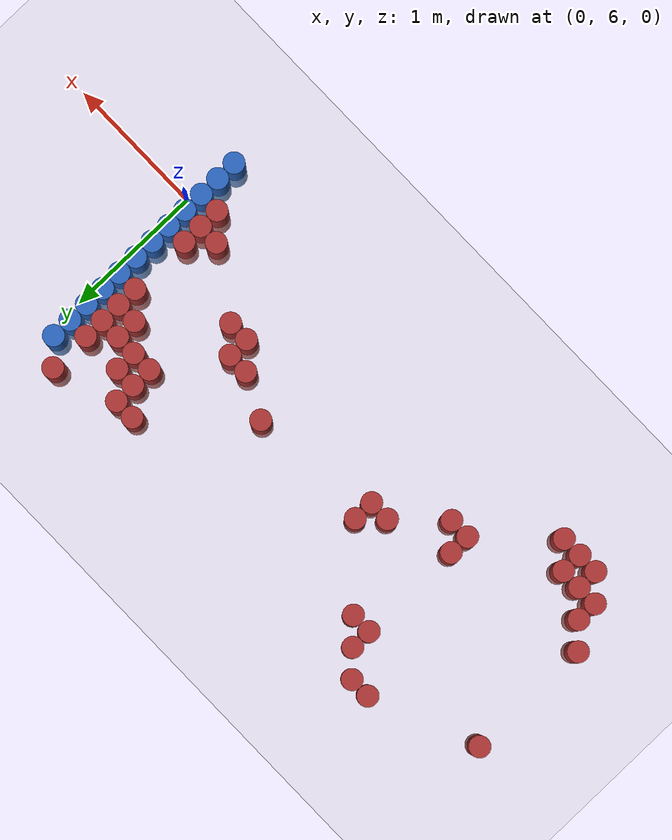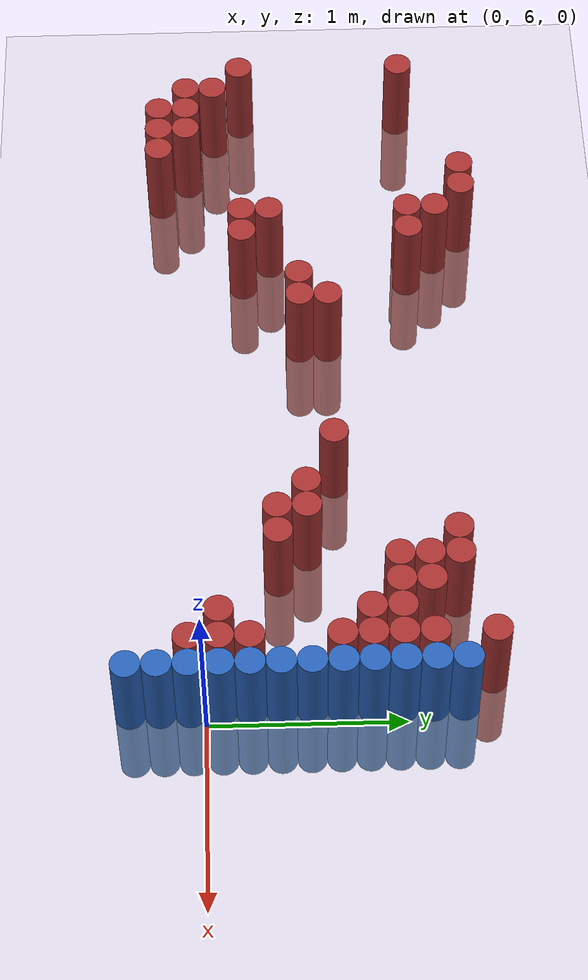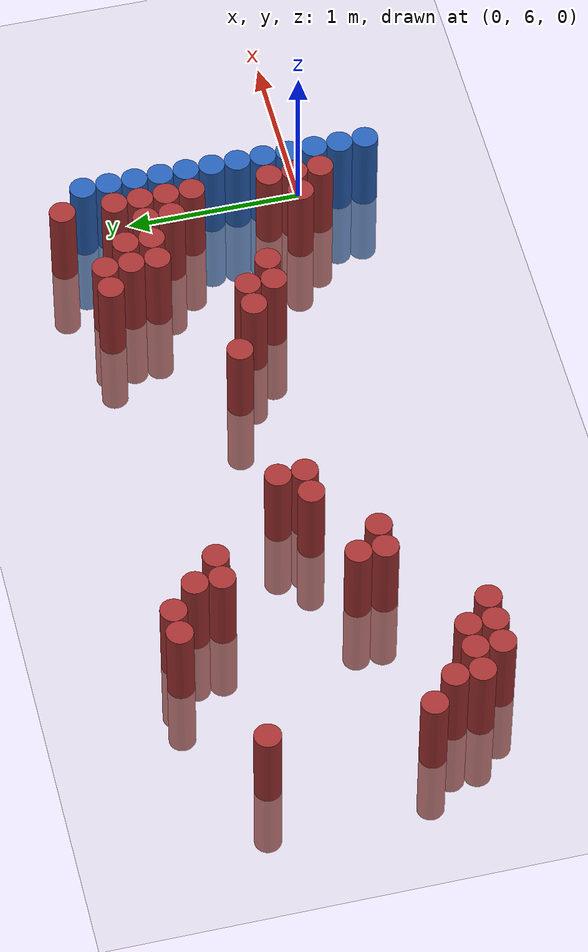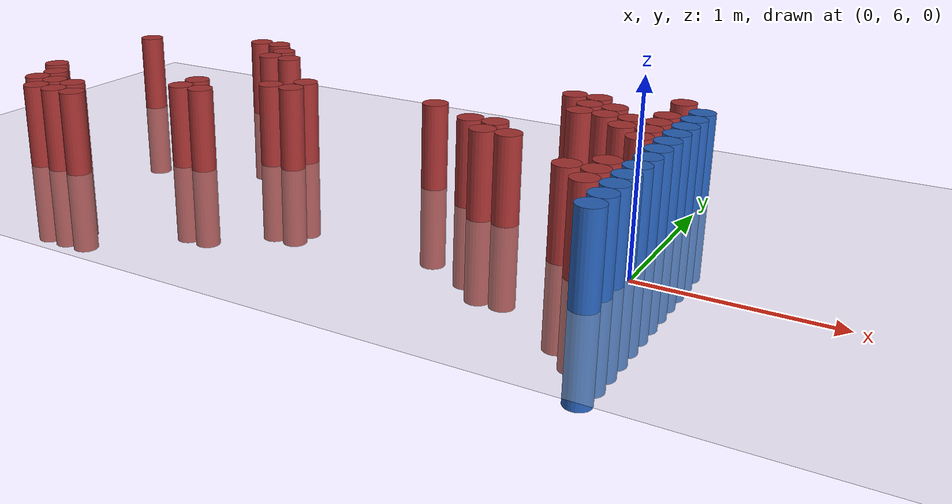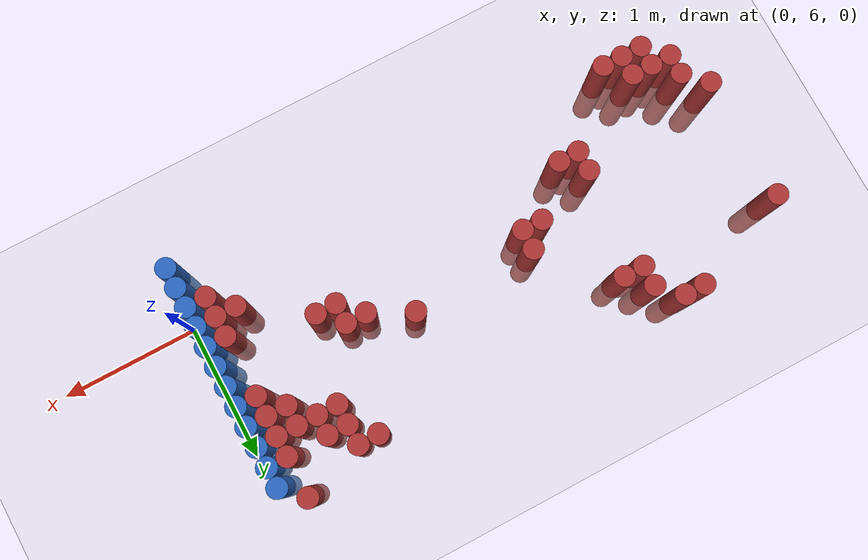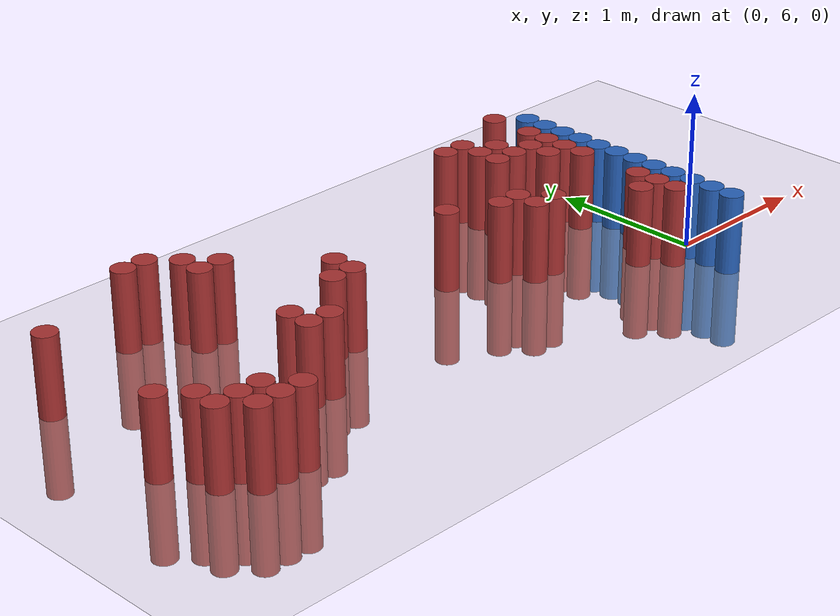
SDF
<sdf version="1.6">
 <world name="default">
  <model name="ground_plane">
   <static>1</static>
   <link name="link">
    <collision name="collision">
     <geometry><plane><normal>0 0 1</normal><size>100 100</size></plane></geometry>
     <surface><friction><ode><mu>100</mu><mu2>50</mu2></ode></friction></surface>
    </collision>
    <visual name="visual">
     <cast_shadows>0</cast_shadows>
     <geometry><plane><normal>0 0 1</normal><size>100 100</size></plane></geometry>
     <material>
      <script><uri>file://media/materials/scripts/gazebo.material</uri><name>Gazebo/Grey</name></script>
     </material>
    </visual>
   </link>
  </model>
  <model name="unit_cylinder_155">
   <static>1</static>
   <pose>-3.975000 6.225000 0.000000 0.000000 0.000000 0.000000</pose>
   <link name="link">
    <inertial>
     <mass>1</mass>
     <inertia><ixx>0.145833</ixx><ixy>0</ixy><ixz>0</ixz><iyy>0.145833</iyy><iyz>0</iyz><izz>0.125</izz></inertia>
    </inertial>
    <collision name="collision">
     <geometry><cylinder><radius>0.075000</radius><length>1</length></cylinder></geometry>
    </collision>
    <visual name="visual">
     <geometry><cylinder><radius>0.075000</radius><length>1</length></cylinder></geometry>
     <material>
      <ambient>0.648000 0.192000 0.192000 1</ambient>
      <diffuse>0.648000 0.192000 0.192000 1</diffuse>
     </material>
     <material>
      <script><name>Gazebo/Grey</name><uri>file://media/materials/scripts/gazebo.material</uri></script>
     </material>
    </visual>
   </link>
  </model>
  <model name="unit_cylinder_156">
   <static>1</static>
   <pose>-3.975000 7.125000 0.000000 0.000000 0.000000 0.000000</pose>
   <link name="link">
    <inertial>
     <mass>1</mass>
     <inertia><ixx>0.145833</ixx><ixy>0</ixy><ixz>0</ixz><iyy>0.145833</iyy><iyz>0</iyz><izz>0.125</izz></inertia>
    </inertial>
    <collision name="collision">
     <geometry><cylinder><radius>0.075000</radius><length>1</length></cylinder></geometry>
    </collision>
    <visual name="visual">
     <geometry><cylinder><radius>0.075000</radius><length>1</length></cylinder></geometry>
     <material>
      <ambient>0.648000 0.192000 0.192000 1</ambient>
      <diffuse>0.648000 0.192000 0.192000 1</diffuse>
     </material>
     <material>
      <script><name>Gazebo/Grey</name><uri>file://media/materials/scripts/gazebo.material</uri></script>
     </material>
    </visual>
   </link>
  </model>
  <model name="unit_cylinder_157">
   <static>1</static>
   <pose>-3.825000 5.925000 0.000000 0.000000 0.000000 0.000000</pose>
   <link name="link">
    <inertial>
     <mass>1</mass>
     <inertia><ixx>0.145833</ixx><ixy>0</ixy><ixz>0</ixz><iyy>0.145833</iyy><iyz>0</iyz><izz>0.125</izz></inertia>
    </inertial>
    <collision name="collision">
     <geometry><cylinder><radius>0.075000</radius><length>1</length></cylinder></geometry>
    </collision>
    <visual name="visual">
     <geometry><cylinder><radius>0.075000</radius><length>1</length></cylinder></geometry>
     <material>
      <ambient>0.648000 0.192000 0.192000 1</ambient>
      <diffuse>0.648000 0.192000 0.192000 1</diffuse>
     </material>
     <material>
      <script><name>Gazebo/Grey</name><uri>file://media/materials/scripts/gazebo.material</uri></script>
     </material>
    </visual>
   </link>
  </model>
  <model name="unit_cylinder_158">
   <static>1</static>
   <pose>-3.825000 6.075000 0.000000 0.000000 0.000000 0.000000</pose>
   <link name="link">
    <inertial>
     <mass>1</mass>
     <inertia><ixx>0.145833</ixx><ixy>0</ixy><ixz>0</ixz><iyy>0.145833</iyy><iyz>0</iyz><izz>0.125</izz></inertia>
    </inertial>
    <collision name="collision">
     <geometry><cylinder><radius>0.075000</radius><length>1</length></cylinder></geometry>
    </collision>
    <visual name="visual">
     <geometry><cylinder><radius>0.075000</radius><length>1</length></cylinder></geometry>
     <material>
      <ambient>0.648000 0.192000 0.192000 1</ambient>
      <diffuse>0.648000 0.192000 0.192000 1</diffuse>
     </material>
     <material>
      <script><name>Gazebo/Grey</name><uri>file://media/materials/scripts/gazebo.material</uri></script>
     </material>
    </visual>
   </link>
  </model>
  <model name="unit_cylinder_159">
   <static>1</static>
   <pose>-3.675000 5.775000 0.000000 0.000000 0.000000 0.000000</pose>
   <link name="link">
    <inertial>
     <mass>1</mass>
     <inertia><ixx>0.145833</ixx><ixy>0</ixy><ixz>0</ixz><iyy>0.145833</iyy><iyz>0</iyz><izz>0.125</izz></inertia>
    </inertial>
    <collision name="collision">
     <geometry><cylinder><radius>0.075000</radius><length>1</length></cylinder></geometry>
    </collision>
    <visual name="visual">
     <geometry><cylinder><radius>0.075000</radius><length>1</length></cylinder></geometry>
     <material>
      <ambient>0.648000 0.192000 0.192000 1</ambient>
      <diffuse>0.648000 0.192000 0.192000 1</diffuse>
     </material>
     <material>
      <script><name>Gazebo/Grey</name><uri>file://media/materials/scripts/gazebo.material</uri></script>
     </material>
    </visual>
   </link>
  </model>
  <model name="unit_cylinder_160">
   <static>1</static>
   <pose>-3.675000 5.925000 0.000000 0.000000 0.000000 0.000000</pose>
   <link name="link">
    <inertial>
     <mass>1</mass>
     <inertia><ixx>0.145833</ixx><ixy>0</ixy><ixz>0</ixz><iyy>0.145833</iyy><iyz>0</iyz><izz>0.125</izz></inertia>
    </inertial>
    <collision name="collision">
     <geometry><cylinder><radius>0.075000</radius><length>1</length></cylinder></geometry>
    </collision>
    <visual name="visual">
     <geometry><cylinder><radius>0.075000</radius><length>1</length></cylinder></geometry>
     <material>
      <ambient>0.648000 0.192000 0.192000 1</ambient>
      <diffuse>0.648000 0.192000 0.192000 1</diffuse>
     </material>
     <material>
      <script><name>Gazebo/Grey</name><uri>file://media/materials/scripts/gazebo.material</uri></script>
     </material>
    </visual>
   </link>
  </model>
  <model name="unit_cylinder_162">
   <static>1</static>
   <pose>-3.525000 5.775000 0.000000 0.000000 0.000000 0.000000</pose>
   <link name="link">
    <inertial>
     <mass>1</mass>
     <inertia><ixx>0.145833</ixx><ixy>0</ixy><ixz>0</ixz><iyy>0.145833</iyy><iyz>0</iyz><izz>0.125</izz></inertia>
    </inertial>
    <collision name="collision">
     <geometry><cylinder><radius>0.075000</radius><length>1</length></cylinder></geometry>
    </collision>
    <visual name="visual">
     <geometry><cylinder><radius>0.075000</radius><length>1</length></cylinder></geometry>
     <material>
      <ambient>0.648000 0.192000 0.192000 1</ambient>
      <diffuse>0.648000 0.192000 0.192000 1</diffuse>
     </material>
     <material>
      <script><name>Gazebo/Grey</name><uri>file://media/materials/scripts/gazebo.material</uri></script>
     </material>
    </visual>
   </link>
  </model>
  <model name="unit_cylinder_163">
   <static>1</static>
   <pose>-3.525000 5.925000 0.000000 0.000000 0.000000 0.000000</pose>
   <link name="link">
    <inertial>
     <mass>1</mass>
     <inertia><ixx>0.145833</ixx><ixy>0</ixy><ixz>0</ixz><iyy>0.145833</iyy><iyz>0</iyz><izz>0.125</izz></inertia>
    </inertial>
    <collision name="collision">
     <geometry><cylinder><radius>0.075000</radius><length>1</length></cylinder></geometry>
    </collision>
    <visual name="visual">
     <geometry><cylinder><radius>0.075000</radius><length>1</length></cylinder></geometry>
     <material>
      <ambient>0.648000 0.192000 0.192000 1</ambient>
      <diffuse>0.648000 0.192000 0.192000 1</diffuse>
     </material>
     <material>
      <script><name>Gazebo/Grey</name><uri>file://media/materials/scripts/gazebo.material</uri></script>
     </material>
    </visual>
   </link>
  </model>
  <model name="unit_cylinder_164">
   <static>1</static>
   <pose>-3.375000 5.775000 0.000000 0.000000 0.000000 0.000000</pose>
   <link name="link">
    <inertial>
     <mass>1</mass>
     <inertia><ixx>0.145833</ixx><ixy>0</ixy><ixz>0</ixz><iyy>0.145833</iyy><iyz>0</iyz><izz>0.125</izz></inertia>
    </inertial>
    <collision name="collision">
     <geometry><cylinder><radius>0.075000</radius><length>1</length></cylinder></geometry>
    </collision>
    <visual name="visual">
     <geometry><cylinder><radius>0.075000</radius><length>1</length></cylinder></geometry>
     <material>
      <ambient>0.648000 0.192000 0.192000 1</ambient>
      <diffuse>0.648000 0.192000 0.192000 1</diffuse>
     </material>
     <material>
      <script><name>Gazebo/Grey</name><uri>file://media/materials/scripts/gazebo.material</uri></script>
     </material>
    </visual>
   </link>
  </model>
  <model name="unit_cylinder_168">
   <static>1</static>
   <pose>-3.225000 7.425000 0.000000 0.000000 0.000000 0.000000</pose>
   <link name="link">
    <inertial>
     <mass>1</mass>
     <inertia><ixx>0.145833</ixx><ixy>0</ixy><ixz>0</ixz><iyy>0.145833</iyy><iyz>0</iyz><izz>0.125</izz></inertia>
    </inertial>
    <collision name="collision">
     <geometry><cylinder><radius>0.075000</radius><length>1</length></cylinder></geometry>
    </collision>
    <visual name="visual">
     <geometry><cylinder><radius>0.075000</radius><length>1</length></cylinder></geometry>
     <material>
      <ambient>0.648000 0.192000 0.192000 1</ambient>
      <diffuse>0.648000 0.192000 0.192000 1</diffuse>
     </material>
     <material>
      <script><name>Gazebo/Grey</name><uri>file://media/materials/scripts/gazebo.material</uri></script>
     </material>
    </visual>
   </link>
  </model>
  <model name="unit_cylinder_174">
   <static>1</static>
   <pose>-3.075000 7.425000 0.000000 0.000000 0.000000 0.000000</pose>
   <link name="link">
    <inertial>
     <mass>1</mass>
     <inertia><ixx>0.145833</ixx><ixy>0</ixy><ixz>0</ixz><iyy>0.145833</iyy><iyz>0</iyz><izz>0.125</izz></inertia>
    </inertial>
    <collision name="collision">
     <geometry><cylinder><radius>0.075000</radius><length>1</length></cylinder></geometry>
    </collision>
    <visual name="visual">
     <geometry><cylinder><radius>0.075000</radius><length>1</length></cylinder></geometry>
     <material>
      <ambient>0.648000 0.192000 0.192000 1</ambient>
      <diffuse>0.648000 0.192000 0.192000 1</diffuse>
     </material>
     <material>
      <script><name>Gazebo/Grey</name><uri>file://media/materials/scripts/gazebo.material</uri></script>
     </material>
    </visual>
   </link>
  </model>
  <model name="unit_cylinder_179">
   <static>1</static>
   <pose>-2.925000 6.225000 0.000000 0.000000 0.000000 0.000000</pose>
   <link name="link">
    <inertial>
     <mass>1</mass>
     <inertia><ixx>0.145833</ixx><ixy>0</ixy><ixz>0</ixz><iyy>0.145833</iyy><iyz>0</iyz><izz>0.125</izz></inertia>
    </inertial>
    <collision name="collision">
     <geometry><cylinder><radius>0.075000</radius><length>1</length></cylinder></geometry>
    </collision>
    <visual name="visual">
     <geometry><cylinder><radius>0.075000</radius><length>1</length></cylinder></geometry>
     <material>
      <ambient>0.648000 0.192000 0.192000 1</ambient>
      <diffuse>0.648000 0.192000 0.192000 1</diffuse>
     </material>
     <material>
      <script><name>Gazebo/Grey</name><uri>file://media/materials/scripts/gazebo.material</uri></script>
     </material>
    </visual>
   </link>
  </model>
  <model name="unit_cylinder_180">
   <static>1</static>
   <pose>-2.925000 6.375000 0.000000 0.000000 0.000000 0.000000</pose>
   <link name="link">
    <inertial>
     <mass>1</mass>
     <inertia><ixx>0.145833</ixx><ixy>0</ixy><ixz>0</ixz><iyy>0.145833</iyy><iyz>0</iyz><izz>0.125</izz></inertia>
    </inertial>
    <collision name="collision">
     <geometry><cylinder><radius>0.075000</radius><length>1</length></cylinder></geometry>
    </collision>
    <visual name="visual">
     <geometry><cylinder><radius>0.075000</radius><length>1</length></cylinder></geometry>
     <material>
      <ambient>0.648000 0.192000 0.192000 1</ambient>
      <diffuse>0.648000 0.192000 0.192000 1</diffuse>
     </material>
     <material>
      <script><name>Gazebo/Grey</name><uri>file://media/materials/scripts/gazebo.material</uri></script>
     </material>
    </visual>
   </link>
  </model>
  <model name="unit_cylinder_181">
   <static>1</static>
   <pose>-2.925000 7.125000 0.000000 0.000000 0.000000 0.000000</pose>
   <link name="link">
    <inertial>
     <mass>1</mass>
     <inertia><ixx>0.145833</ixx><ixy>0</ixy><ixz>0</ixz><iyy>0.145833</iyy><iyz>0</iyz><izz>0.125</izz></inertia>
    </inertial>
    <collision name="collision">
     <geometry><cylinder><radius>0.075000</radius><length>1</length></cylinder></geometry>
    </collision>
    <visual name="visual">
     <geometry><cylinder><radius>0.075000</radius><length>1</length></cylinder></geometry>
     <material>
      <ambient>0.648000 0.192000 0.192000 1</ambient>
      <diffuse>0.648000 0.192000 0.192000 1</diffuse>
     </material>
     <material>
      <script><name>Gazebo/Grey</name><uri>file://media/materials/scripts/gazebo.material</uri></script>
     </material>
    </visual>
   </link>
  </model>
  <model name="unit_cylinder_182">
   <static>1</static>
   <pose>-2.925000 7.275000 0.000000 0.000000 0.000000 0.000000</pose>
   <link name="link">
    <inertial>
     <mass>1</mass>
     <inertia><ixx>0.145833</ixx><ixy>0</ixy><ixz>0</ixz><iyy>0.145833</iyy><iyz>0</iyz><izz>0.125</izz></inertia>
    </inertial>
    <collision name="collision">
     <geometry><cylinder><radius>0.075000</radius><length>1</length></cylinder></geometry>
    </collision>
    <visual name="visual">
     <geometry><cylinder><radius>0.075000</radius><length>1</length></cylinder></geometry>
     <material>
      <ambient>0.648000 0.192000 0.192000 1</ambient>
      <diffuse>0.648000 0.192000 0.192000 1</diffuse>
     </material>
     <material>
      <script><name>Gazebo/Grey</name><uri>file://media/materials/scripts/gazebo.material</uri></script>
     </material>
    </visual>
   </link>
  </model>
  <model name="unit_cylinder_185">
   <static>1</static>
   <pose>-2.775000 6.225000 0.000000 0.000000 0.000000 0.000000</pose>
   <link name="link">
    <inertial>
     <mass>1</mass>
     <inertia><ixx>0.145833</ixx><ixy>0</ixy><ixz>0</ixz><iyy>0.145833</iyy><iyz>0</iyz><izz>0.125</izz></inertia>
    </inertial>
    <collision name="collision">
     <geometry><cylinder><radius>0.075000</radius><length>1</length></cylinder></geometry>
    </collision>
    <visual name="visual">
     <geometry><cylinder><radius>0.075000</radius><length>1</length></cylinder></geometry>
     <material>
      <ambient>0.648000 0.192000 0.192000 1</ambient>
      <diffuse>0.648000 0.192000 0.192000 1</diffuse>
     </material>
     <material>
      <script><name>Gazebo/Grey</name><uri>file://media/materials/scripts/gazebo.material</uri></script>
     </material>
    </visual>
   </link>
  </model>
  <model name="unit_cylinder_186">
   <static>1</static>
   <pose>-2.775000 7.125000 0.000000 0.000000 0.000000 0.000000</pose>
   <link name="link">
    <inertial>
     <mass>1</mass>
     <inertia><ixx>0.145833</ixx><ixy>0</ixy><ixz>0</ixz><iyy>0.145833</iyy><iyz>0</iyz><izz>0.125</izz></inertia>
    </inertial>
    <collision name="collision">
     <geometry><cylinder><radius>0.075000</radius><length>1</length></cylinder></geometry>
    </collision>
    <visual name="visual">
     <geometry><cylinder><radius>0.075000</radius><length>1</length></cylinder></geometry>
     <material>
      <ambient>0.648000 0.192000 0.192000 1</ambient>
      <diffuse>0.648000 0.192000 0.192000 1</diffuse>
     </material>
     <material>
      <script><name>Gazebo/Grey</name><uri>file://media/materials/scripts/gazebo.material</uri></script>
     </material>
    </visual>
   </link>
  </model>
  <model name="unit_cylinder_190">
   <static>1</static>
   <pose>-2.475000 6.525000 0.000000 0.000000 0.000000 0.000000</pose>
   <link name="link">
    <inertial>
     <mass>1</mass>
     <inertia><ixx>0.145833</ixx><ixy>0</ixy><ixz>0</ixz><iyy>0.145833</iyy><iyz>0</iyz><izz>0.125</izz></inertia>
    </inertial>
    <collision name="collision">
     <geometry><cylinder><radius>0.075000</radius><length>1</length></cylinder></geometry>
    </collision>
    <visual name="visual">
     <geometry><cylinder><radius>0.075000</radius><length>1</length></cylinder></geometry>
     <material>
      <ambient>0.648000 0.192000 0.192000 1</ambient>
      <diffuse>0.648000 0.192000 0.192000 1</diffuse>
     </material>
     <material>
      <script><name>Gazebo/Grey</name><uri>file://media/materials/scripts/gazebo.material</uri></script>
     </material>
    </visual>
   </link>
  </model>
  <model name="unit_cylinder_192">
   <static>1</static>
   <pose>-2.325000 6.525000 0.000000 0.000000 0.000000 0.000000</pose>
   <link name="link">
    <inertial>
     <mass>1</mass>
     <inertia><ixx>0.145833</ixx><ixy>0</ixy><ixz>0</ixz><iyy>0.145833</iyy><iyz>0</iyz><izz>0.125</izz></inertia>
    </inertial>
    <collision name="collision">
     <geometry><cylinder><radius>0.075000</radius><length>1</length></cylinder></geometry>
    </collision>
    <visual name="visual">
     <geometry><cylinder><radius>0.075000</radius><length>1</length></cylinder></geometry>
     <material>
      <ambient>0.648000 0.192000 0.192000 1</ambient>
      <diffuse>0.648000 0.192000 0.192000 1</diffuse>
     </material>
     <material>
      <script><name>Gazebo/Grey</name><uri>file://media/materials/scripts/gazebo.material</uri></script>
     </material>
    </visual>
   </link>
  </model>
  <model name="unit_cylinder_193">
   <static>1</static>
   <pose>-2.325000 6.675000 0.000000 0.000000 0.000000 0.000000</pose>
   <link name="link">
    <inertial>
     <mass>1</mass>
     <inertia><ixx>0.145833</ixx><ixy>0</ixy><ixz>0</ixz><iyy>0.145833</iyy><iyz>0</iyz><izz>0.125</izz></inertia>
    </inertial>
    <collision name="collision">
     <geometry><cylinder><radius>0.075000</radius><length>1</length></cylinder></geometry>
    </collision>
    <visual name="visual">
     <geometry><cylinder><radius>0.075000</radius><length>1</length></cylinder></geometry>
     <material>
      <ambient>0.648000 0.192000 0.192000 1</ambient>
      <diffuse>0.648000 0.192000 0.192000 1</diffuse>
     </material>
     <material>
      <script><name>Gazebo/Grey</name><uri>file://media/materials/scripts/gazebo.material</uri></script>
     </material>
    </visual>
   </link>
  </model>
  <model name="unit_cylinder_211">
   <static>1</static>
   <pose>-1.425000 6.675000 0.000000 0.000000 0.000000 0.000000</pose>
   <link name="link">
    <inertial>
     <mass>1</mass>
     <inertia><ixx>0.145833</ixx><ixy>0</ixy><ixz>0</ixz><iyy>0.145833</iyy><iyz>0</iyz><izz>0.125</izz></inertia>
    </inertial>
    <collision name="collision">
     <geometry><cylinder><radius>0.075000</radius><length>1</length></cylinder></geometry>
    </collision>
    <visual name="visual">
     <geometry><cylinder><radius>0.075000</radius><length>1</length></cylinder></geometry>
     <material>
      <ambient>0.648000 0.192000 0.192000 1</ambient>
      <diffuse>0.648000 0.192000 0.192000 1</diffuse>
     </material>
     <material>
      <script><name>Gazebo/Grey</name><uri>file://media/materials/scripts/gazebo.material</uri></script>
     </material>
    </visual>
   </link>
  </model>
  <model name="unit_cylinder_214">
   <static>1</static>
   <pose>-1.125000 6.525000 0.000000 0.000000 0.000000 0.000000</pose>
   <link name="link">
    <inertial>
     <mass>1</mass>
     <inertia><ixx>0.145833</ixx><ixy>0</ixy><ixz>0</ixz><iyy>0.145833</iyy><iyz>0</iyz><izz>0.125</izz></inertia>
    </inertial>
    <collision name="collision">
     <geometry><cylinder><radius>0.075000</radius><length>1</length></cylinder></geometry>
    </collision>
    <visual name="visual">
     <geometry><cylinder><radius>0.075000</radius><length>1</length></cylinder></geometry>
     <material>
      <ambient>0.648000 0.192000 0.192000 1</ambient>
      <diffuse>0.648000 0.192000 0.192000 1</diffuse>
     </material>
     <material>
      <script><name>Gazebo/Grey</name><uri>file://media/materials/scripts/gazebo.material</uri></script>
     </material>
    </visual>
   </link>
  </model>
  <model name="unit_cylinder_215">
   <static>1</static>
   <pose>-0.975000 6.375000 0.000000 0.000000 0.000000 0.000000</pose>
   <link name="link">
    <inertial>
     <mass>1</mass>
     <inertia><ixx>0.145833</ixx><ixy>0</ixy><ixz>0</ixz><iyy>0.145833</iyy><iyz>0</iyz><izz>0.125</izz></inertia>
    </inertial>
    <collision name="collision">
     <geometry><cylinder><radius>0.075000</radius><length>1</length></cylinder></geometry>
    </collision>
    <visual name="visual">
     <geometry><cylinder><radius>0.075000</radius><length>1</length></cylinder></geometry>
     <material>
      <ambient>0.648000 0.192000 0.192000 1</ambient>
      <diffuse>0.648000 0.192000 0.192000 1</diffuse>
     </material>
     <material>
      <script><name>Gazebo/Grey</name><uri>file://media/materials/scripts/gazebo.material</uri></script>
     </material>
    </visual>
   </link>
  </model>
  <model name="unit_cylinder_216">
   <static>1</static>
   <pose>-0.975000 6.525000 0.000000 0.000000 0.000000 0.000000</pose>
   <link name="link">
    <inertial>
     <mass>1</mass>
     <inertia><ixx>0.145833</ixx><ixy>0</ixy><ixz>0</ixz><iyy>0.145833</iyy><iyz>0</iyz><izz>0.125</izz></inertia>
    </inertial>
    <collision name="collision">
     <geometry><cylinder><radius>0.075000</radius><length>1</length></cylinder></geometry>
    </collision>
    <visual name="visual">
     <geometry><cylinder><radius>0.075000</radius><length>1</length></cylinder></geometry>
     <material>
      <ambient>0.648000 0.192000 0.192000 1</ambient>
      <diffuse>0.648000 0.192000 0.192000 1</diffuse>
     </material>
     <material>
      <script><name>Gazebo/Grey</name><uri>file://media/materials/scripts/gazebo.material</uri></script>
     </material>
    </visual>
   </link>
  </model>
  <model name="unit_cylinder_217">
   <static>1</static>
   <pose>-0.825000 6.375000 0.000000 0.000000 0.000000 0.000000</pose>
   <link name="link">
    <inertial>
     <mass>1</mass>
     <inertia><ixx>0.145833</ixx><ixy>0</ixy><ixz>0</ixz><iyy>0.145833</iyy><iyz>0</iyz><izz>0.125</izz></inertia>
    </inertial>
    <collision name="collision">
     <geometry><cylinder><radius>0.075000</radius><length>1</length></cylinder></geometry>
    </collision>
    <visual name="visual">
     <geometry><cylinder><radius>0.075000</radius><length>1</length></cylinder></geometry>
     <material>
      <ambient>0.648000 0.192000 0.192000 1</ambient>
      <diffuse>0.648000 0.192000 0.192000 1</diffuse>
     </material>
     <material>
      <script><name>Gazebo/Grey</name><uri>file://media/materials/scripts/gazebo.material</uri></script>
     </material>
    </visual>
   </link>
  </model>
  <model name="unit_cylinder_218">
   <static>1</static>
   <pose>-0.825000 7.275000 0.000000 0.000000 0.000000 0.000000</pose>
   <link name="link">
    <inertial>
     <mass>1</mass>
     <inertia><ixx>0.145833</ixx><ixy>0</ixy><ixz>0</ixz><iyy>0.145833</iyy><iyz>0</iyz><izz>0.125</izz></inertia>
    </inertial>
    <collision name="collision">
     <geometry><cylinder><radius>0.075000</radius><length>1</length></cylinder></geometry>
    </collision>
    <visual name="visual">
     <geometry><cylinder><radius>0.075000</radius><length>1</length></cylinder></geometry>
     <material>
      <ambient>0.648000 0.192000 0.192000 1</ambient>
      <diffuse>0.648000 0.192000 0.192000 1</diffuse>
     </material>
     <material>
      <script><name>Gazebo/Grey</name><uri>file://media/materials/scripts/gazebo.material</uri></script>
     </material>
    </visual>
   </link>
  </model>
  <model name="unit_cylinder_219">
   <static>1</static>
   <pose>-0.675000 6.975000 0.000000 0.000000 0.000000 0.000000</pose>
   <link name="link">
    <inertial>
     <mass>1</mass>
     <inertia><ixx>0.145833</ixx><ixy>0</ixy><ixz>0</ixz><iyy>0.145833</iyy><iyz>0</iyz><izz>0.125</izz></inertia>
    </inertial>
    <collision name="collision">
     <geometry><cylinder><radius>0.075000</radius><length>1</length></cylinder></geometry>
    </collision>
    <visual name="visual">
     <geometry><cylinder><radius>0.075000</radius><length>1</length></cylinder></geometry>
     <material>
      <ambient>0.648000 0.192000 0.192000 1</ambient>
      <diffuse>0.648000 0.192000 0.192000 1</diffuse>
     </material>
     <material>
      <script><name>Gazebo/Grey</name><uri>file://media/materials/scripts/gazebo.material</uri></script>
     </material>
    </visual>
   </link>
  </model>
  <model name="unit_cylinder_220">
   <static>1</static>
   <pose>-0.675000 7.125000 0.000000 0.000000 0.000000 0.000000</pose>
   <link name="link">
    <inertial>
     <mass>1</mass>
     <inertia><ixx>0.145833</ixx><ixy>0</ixy><ixz>0</ixz><iyy>0.145833</iyy><iyz>0</iyz><izz>0.125</izz></inertia>
    </inertial>
    <collision name="collision">
     <geometry><cylinder><radius>0.075000</radius><length>1</length></cylinder></geometry>
    </collision>
    <visual name="visual">
     <geometry><cylinder><radius>0.075000</radius><length>1</length></cylinder></geometry>
     <material>
      <ambient>0.648000 0.192000 0.192000 1</ambient>
      <diffuse>0.648000 0.192000 0.192000 1</diffuse>
     </material>
     <material>
      <script><name>Gazebo/Grey</name><uri>file://media/materials/scripts/gazebo.material</uri></script>
     </material>
    </visual>
   </link>
  </model>
  <model name="unit_cylinder_221">
   <static>1</static>
   <pose>-0.675000 7.275000 0.000000 0.000000 0.000000 0.000000</pose>
   <link name="link">
    <inertial>
     <mass>1</mass>
     <inertia><ixx>0.145833</ixx><ixy>0</ixy><ixz>0</ixz><iyy>0.145833</iyy><iyz>0</iyz><izz>0.125</izz></inertia>
    </inertial>
    <collision name="collision">
     <geometry><cylinder><radius>0.075000</radius><length>1</length></cylinder></geometry>
    </collision>
    <visual name="visual">
     <geometry><cylinder><radius>0.075000</radius><length>1</length></cylinder></geometry>
     <material>
      <ambient>0.648000 0.192000 0.192000 1</ambient>
      <diffuse>0.648000 0.192000 0.192000 1</diffuse>
     </material>
     <material>
      <script><name>Gazebo/Grey</name><uri>file://media/materials/scripts/gazebo.material</uri></script>
     </material>
    </visual>
   </link>
  </model>
  <model name="unit_cylinder_222">
   <static>1</static>
   <pose>-0.525000 6.975000 0.000000 0.000000 0.000000 0.000000</pose>
   <link name="link">
    <inertial>
     <mass>1</mass>
     <inertia><ixx>0.145833</ixx><ixy>0</ixy><ixz>0</ixz><iyy>0.145833</iyy><iyz>0</iyz><izz>0.125</izz></inertia>
    </inertial>
    <collision name="collision">
     <geometry><cylinder><radius>0.075000</radius><length>1</length></cylinder></geometry>
    </collision>
    <visual name="visual">
     <geometry><cylinder><radius>0.075000</radius><length>1</length></cylinder></geometry>
     <material>
      <ambient>0.648000 0.192000 0.192000 1</ambient>
      <diffuse>0.648000 0.192000 0.192000 1</diffuse>
     </material>
     <material>
      <script><name>Gazebo/Grey</name><uri>file://media/materials/scripts/gazebo.material</uri></script>
     </material>
    </visual>
   </link>
  </model>
  <model name="unit_cylinder_223">
   <static>1</static>
   <pose>-0.525000 7.125000 0.000000 0.000000 0.000000 0.000000</pose>
   <link name="link">
    <inertial>
     <mass>1</mass>
     <inertia><ixx>0.145833</ixx><ixy>0</ixy><ixz>0</ixz><iyy>0.145833</iyy><iyz>0</iyz><izz>0.125</izz></inertia>
    </inertial>
    <collision name="collision">
     <geometry><cylinder><radius>0.075000</radius><length>1</length></cylinder></geometry>
    </collision>
    <visual name="visual">
     <geometry><cylinder><radius>0.075000</radius><length>1</length></cylinder></geometry>
     <material>
      <ambient>0.648000 0.192000 0.192000 1</ambient>
      <diffuse>0.648000 0.192000 0.192000 1</diffuse>
     </material>
     <material>
      <script><name>Gazebo/Grey</name><uri>file://media/materials/scripts/gazebo.material</uri></script>
     </material>
    </visual>
   </link>
  </model>
  <model name="unit_cylinder_224">
   <static>1</static>
   <pose>-0.375000 6.075000 0.000000 0.000000 0.000000 0.000000</pose>
   <link name="link">
    <inertial>
     <mass>1</mass>
     <inertia><ixx>0.145833</ixx><ixy>0</ixy><ixz>0</ixz><iyy>0.145833</iyy><iyz>0</iyz><izz>0.125</izz></inertia>
    </inertial>
    <collision name="collision">
     <geometry><cylinder><radius>0.075000</radius><length>1</length></cylinder></geometry>
    </collision>
    <visual name="visual">
     <geometry><cylinder><radius>0.075000</radius><length>1</length></cylinder></geometry>
     <material>
      <ambient>0.648000 0.192000 0.192000 1</ambient>
      <diffuse>0.648000 0.192000 0.192000 1</diffuse>
     </material>
     <material>
      <script><name>Gazebo/Grey</name><uri>file://media/materials/scripts/gazebo.material</uri></script>
     </material>
    </visual>
   </link>
  </model>
  <model name="unit_cylinder_225">
   <static>1</static>
   <pose>-0.375000 6.825000 0.000000 0.000000 0.000000 0.000000</pose>
   <link name="link">
    <inertial>
     <mass>1</mass>
     <inertia><ixx>0.145833</ixx><ixy>0</ixy><ixz>0</ixz><iyy>0.145833</iyy><iyz>0</iyz><izz>0.125</izz></inertia>
    </inertial>
    <collision name="collision">
     <geometry><cylinder><radius>0.075000</radius><length>1</length></cylinder></geometry>
    </collision>
    <visual name="visual">
     <geometry><cylinder><radius>0.075000</radius><length>1</length></cylinder></geometry>
     <material>
      <ambient>0.648000 0.192000 0.192000 1</ambient>
      <diffuse>0.648000 0.192000 0.192000 1</diffuse>
     </material>
     <material>
      <script><name>Gazebo/Grey</name><uri>file://media/materials/scripts/gazebo.material</uri></script>
     </material>
    </visual>
   </link>
  </model>
  <model name="unit_cylinder_226">
   <static>1</static>
   <pose>-0.375000 6.975000 0.000000 0.000000 0.000000 0.000000</pose>
   <link name="link">
    <inertial>
     <mass>1</mass>
     <inertia><ixx>0.145833</ixx><ixy>0</ixy><ixz>0</ixz><iyy>0.145833</iyy><iyz>0</iyz><izz>0.125</izz></inertia>
    </inertial>
    <collision name="collision">
     <geometry><cylinder><radius>0.075000</radius><length>1</length></cylinder></geometry>
    </collision>
    <visual name="visual">
     <geometry><cylinder><radius>0.075000</radius><length>1</length></cylinder></geometry>
     <material>
      <ambient>0.648000 0.192000 0.192000 1</ambient>
      <diffuse>0.648000 0.192000 0.192000 1</diffuse>
     </material>
     <material>
      <script><name>Gazebo/Grey</name><uri>file://media/materials/scripts/gazebo.material</uri></script>
     </material>
    </visual>
   </link>
  </model>
  <model name="unit_cylinder_228">
   <static>1</static>
   <pose>-0.225000 5.925000 0.000000 0.000000 0.000000 0.000000</pose>
   <link name="link">
    <inertial>
     <mass>1</mass>
     <inertia><ixx>0.145833</ixx><ixy>0</ixy><ixz>0</ixz><iyy>0.145833</iyy><iyz>0</iyz><izz>0.125</izz></inertia>
    </inertial>
    <collision name="collision">
     <geometry><cylinder><radius>0.075000</radius><length>1</length></cylinder></geometry>
    </collision>
    <visual name="visual">
     <geometry><cylinder><radius>0.075000</radius><length>1</length></cylinder></geometry>
     <material>
      <ambient>0.648000 0.192000 0.192000 1</ambient>
      <diffuse>0.648000 0.192000 0.192000 1</diffuse>
     </material>
     <material>
      <script><name>Gazebo/Grey</name><uri>file://media/materials/scripts/gazebo.material</uri></script>
     </material>
    </visual>
   </link>
  </model>
  <model name="unit_cylinder_229">
   <static>1</static>
   <pose>-0.225000 6.075000 0.000000 0.000000 0.000000 0.000000</pose>
   <link name="link">
    <inertial>
     <mass>1</mass>
     <inertia><ixx>0.145833</ixx><ixy>0</ixy><ixz>0</ixz><iyy>0.145833</iyy><iyz>0</iyz><izz>0.125</izz></inertia>
    </inertial>
    <collision name="collision">
     <geometry><cylinder><radius>0.075000</radius><length>1</length></cylinder></geometry>
    </collision>
    <visual name="visual">
     <geometry><cylinder><radius>0.075000</radius><length>1</length></cylinder></geometry>
     <material>
      <ambient>0.648000 0.192000 0.192000 1</ambient>
      <diffuse>0.648000 0.192000 0.192000 1</diffuse>
     </material>
     <material>
      <script><name>Gazebo/Grey</name><uri>file://media/materials/scripts/gazebo.material</uri></script>
     </material>
    </visual>
   </link>
  </model>
  <model name="unit_cylinder_230">
   <static>1</static>
   <pose>-0.225000 6.225000 0.000000 0.000000 0.000000 0.000000</pose>
   <link name="link">
    <inertial>
     <mass>1</mass>
     <inertia><ixx>0.145833</ixx><ixy>0</ixy><ixz>0</ixz><iyy>0.145833</iyy><iyz>0</iyz><izz>0.125</izz></inertia>
    </inertial>
    <collision name="collision">
     <geometry><cylinder><radius>0.075000</radius><length>1</length></cylinder></geometry>
    </collision>
    <visual name="visual">
     <geometry><cylinder><radius>0.075000</radius><length>1</length></cylinder></geometry>
     <material>
      <ambient>0.648000 0.192000 0.192000 1</ambient>
      <diffuse>0.648000 0.192000 0.192000 1</diffuse>
     </material>
     <material>
      <script><name>Gazebo/Grey</name><uri>file://media/materials/scripts/gazebo.material</uri></script>
     </material>
    </visual>
   </link>
  </model>
  <model name="unit_cylinder_231">
   <static>1</static>
   <pose>-0.225000 6.675000 0.000000 0.000000 0.000000 0.000000</pose>
   <link name="link">
    <inertial>
     <mass>1</mass>
     <inertia><ixx>0.145833</ixx><ixy>0</ixy><ixz>0</ixz><iyy>0.145833</iyy><iyz>0</iyz><izz>0.125</izz></inertia>
    </inertial>
    <collision name="collision">
     <geometry><cylinder><radius>0.075000</radius><length>1</length></cylinder></geometry>
    </collision>
    <visual name="visual">
     <geometry><cylinder><radius>0.075000</radius><length>1</length></cylinder></geometry>
     <material>
      <ambient>0.648000 0.192000 0.192000 1</ambient>
      <diffuse>0.648000 0.192000 0.192000 1</diffuse>
     </material>
     <material>
      <script><name>Gazebo/Grey</name><uri>file://media/materials/scripts/gazebo.material</uri></script>
     </material>
    </visual>
   </link>
  </model>
  <model name="unit_cylinder_232">
   <static>1</static>
   <pose>-0.225000 6.825000 0.000000 0.000000 0.000000 0.000000</pose>
   <link name="link">
    <inertial>
     <mass>1</mass>
     <inertia><ixx>0.145833</ixx><ixy>0</ixy><ixz>0</ixz><iyy>0.145833</iyy><iyz>0</iyz><izz>0.125</izz></inertia>
    </inertial>
    <collision name="collision">
     <geometry><cylinder><radius>0.075000</radius><length>1</length></cylinder></geometry>
    </collision>
    <visual name="visual">
     <geometry><cylinder><radius>0.075000</radius><length>1</length></cylinder></geometry>
     <material>
      <ambient>0.648000 0.192000 0.192000 1</ambient>
      <diffuse>0.648000 0.192000 0.192000 1</diffuse>
     </material>
     <material>
      <script><name>Gazebo/Grey</name><uri>file://media/materials/scripts/gazebo.material</uri></script>
     </material>
    </visual>
   </link>
  </model>
  <model name="unit_cylinder_233">
   <static>1</static>
   <pose>-0.225000 6.975000 0.000000 0.000000 0.000000 0.000000</pose>
   <link name="link">
    <inertial>
     <mass>1</mass>
     <inertia><ixx>0.145833</ixx><ixy>0</ixy><ixz>0</ixz><iyy>0.145833</iyy><iyz>0</iyz><izz>0.125</izz></inertia>
    </inertial>
    <collision name="collision">
     <geometry><cylinder><radius>0.075000</radius><length>1</length></cylinder></geometry>
    </collision>
    <visual name="visual">
     <geometry><cylinder><radius>0.075000</radius><length>1</length></cylinder></geometry>
     <material>
      <ambient>0.648000 0.192000 0.192000 1</ambient>
      <diffuse>0.648000 0.192000 0.192000 1</diffuse>
     </material>
     <material>
      <script><name>Gazebo/Grey</name><uri>file://media/materials/scripts/gazebo.material</uri></script>
     </material>
    </visual>
   </link>
  </model>
  <model name="unit_cylinder_234">
   <static>1</static>
   <pose>-0.225000 7.125000 0.000000 0.000000 0.000000 0.000000</pose>
   <link name="link">
    <inertial>
     <mass>1</mass>
     <inertia><ixx>0.145833</ixx><ixy>0</ixy><ixz>0</ixz><iyy>0.145833</iyy><iyz>0</iyz><izz>0.125</izz></inertia>
    </inertial>
    <collision name="collision">
     <geometry><cylinder><radius>0.075000</radius><length>1</length></cylinder></geometry>
    </collision>
    <visual name="visual">
     <geometry><cylinder><radius>0.075000</radius><length>1</length></cylinder></geometry>
     <material>
      <ambient>0.648000 0.192000 0.192000 1</ambient>
      <diffuse>0.648000 0.192000 0.192000 1</diffuse>
     </material>
     <material>
      <script><name>Gazebo/Grey</name><uri>file://media/materials/scripts/gazebo.material</uri></script>
     </material>
    </visual>
   </link>
  </model>
  <model name="unit_cylinder_235">
   <static>1</static>
   <pose>-0.225000 7.425000 0.000000 0.000000 0.000000 0.000000</pose>
   <link name="link">
    <inertial>
     <mass>1</mass>
     <inertia><ixx>0.145833</ixx><ixy>0</ixy><ixz>0</ixz><iyy>0.145833</iyy><iyz>0</iyz><izz>0.125</izz></inertia>
    </inertial>
    <collision name="collision">
     <geometry><cylinder><radius>0.075000</radius><length>1</length></cylinder></geometry>
    </collision>
    <visual name="visual">
     <geometry><cylinder><radius>0.075000</radius><length>1</length></cylinder></geometry>
     <material>
      <ambient>0.648000 0.192000 0.192000 1</ambient>
      <diffuse>0.648000 0.192000 0.192000 1</diffuse>
     </material>
     <material>
      <script><name>Gazebo/Grey</name><uri>file://media/materials/scripts/gazebo.material</uri></script>
     </material>
    </visual>
   </link>
  </model>
  <model name="unit_cylinder_246">
   <static>1</static>
   <pose>-0.075000 5.625000 0.000000 0.000000 0.000000 0.000000</pose>
   <link name="link">
    <inertial>
     <mass>1</mass>
     <inertia><ixx>0.145833</ixx><ixy>0</ixy><ixz>0</ixz><iyy>0.145833</iyy><iyz>0</iyz><izz>0.125</izz></inertia>
    </inertial>
    <collision name="collision">
     <geometry><cylinder><radius>0.075000</radius><length>1</length></cylinder></geometry>
    </collision>
    <visual name="visual">
     <geometry><cylinder><radius>0.075000</radius><length>1</length></cylinder></geometry>
     <material>
      <ambient>0.152000 0.379000 0.720000 1</ambient>
      <diffuse>0.152000 0.379000 0.720000 1</diffuse>
     </material>
     <material>
      <script><name>Gazebo/Grey</name><uri>file://media/materials/scripts/gazebo.material</uri></script>
     </material>
    </visual>
   </link>
  </model>
  <model name="unit_cylinder_247">
   <static>1</static>
   <pose>-0.075000 5.775000 0.000000 0.000000 0.000000 0.000000</pose>
   <link name="link">
    <inertial>
     <mass>1</mass>
     <inertia><ixx>0.145833</ixx><ixy>0</ixy><ixz>0</ixz><iyy>0.145833</iyy><iyz>0</iyz><izz>0.125</izz></inertia>
    </inertial>
    <collision name="collision">
     <geometry><cylinder><radius>0.075000</radius><length>1</length></cylinder></geometry>
    </collision>
    <visual name="visual">
     <geometry><cylinder><radius>0.075000</radius><length>1</length></cylinder></geometry>
     <material>
      <ambient>0.152000 0.379000 0.720000 1</ambient>
      <diffuse>0.152000 0.379000 0.720000 1</diffuse>
     </material>
     <material>
      <script><name>Gazebo/Grey</name><uri>file://media/materials/scripts/gazebo.material</uri></script>
     </material>
    </visual>
   </link>
  </model>
  <model name="unit_cylinder_248">
   <static>1</static>
   <pose>-0.075000 5.925000 0.000000 0.000000 0.000000 0.000000</pose>
   <link name="link">
    <inertial>
     <mass>1</mass>
     <inertia><ixx>0.145833</ixx><ixy>0</ixy><ixz>0</ixz><iyy>0.145833</iyy><iyz>0</iyz><izz>0.125</izz></inertia>
    </inertial>
    <collision name="collision">
     <geometry><cylinder><radius>0.075000</radius><length>1</length></cylinder></geometry>
    </collision>
    <visual name="visual">
     <geometry><cylinder><radius>0.075000</radius><length>1</length></cylinder></geometry>
     <material>
      <ambient>0.152000 0.379000 0.720000 1</ambient>
      <diffuse>0.152000 0.379000 0.720000 1</diffuse>
     </material>
     <material>
      <script><name>Gazebo/Grey</name><uri>file://media/materials/scripts/gazebo.material</uri></script>
     </material>
    </visual>
   </link>
  </model>
  <model name="unit_cylinder_249">
   <static>1</static>
   <pose>-0.075000 6.075000 0.000000 0.000000 0.000000 0.000000</pose>
   <link name="link">
    <inertial>
     <mass>1</mass>
     <inertia><ixx>0.145833</ixx><ixy>0</ixy><ixz>0</ixz><iyy>0.145833</iyy><iyz>0</iyz><izz>0.125</izz></inertia>
    </inertial>
    <collision name="collision">
     <geometry><cylinder><radius>0.075000</radius><length>1</length></cylinder></geometry>
    </collision>
    <visual name="visual">
     <geometry><cylinder><radius>0.075000</radius><length>1</length></cylinder></geometry>
     <material>
      <ambient>0.152000 0.379000 0.720000 1</ambient>
      <diffuse>0.152000 0.379000 0.720000 1</diffuse>
     </material>
     <material>
      <script><name>Gazebo/Grey</name><uri>file://media/materials/scripts/gazebo.material</uri></script>
     </material>
    </visual>
   </link>
  </model>
  <model name="unit_cylinder_250">
   <static>1</static>
   <pose>-0.075000 6.225000 0.000000 0.000000 0.000000 0.000000</pose>
   <link name="link">
    <inertial>
     <mass>1</mass>
     <inertia><ixx>0.145833</ixx><ixy>0</ixy><ixz>0</ixz><iyy>0.145833</iyy><iyz>0</iyz><izz>0.125</izz></inertia>
    </inertial>
    <collision name="collision">
     <geometry><cylinder><radius>0.075000</radius><length>1</length></cylinder></geometry>
    </collision>
    <visual name="visual">
     <geometry><cylinder><radius>0.075000</radius><length>1</length></cylinder></geometry>
     <material>
      <ambient>0.152000 0.379000 0.720000 1</ambient>
      <diffuse>0.152000 0.379000 0.720000 1</diffuse>
     </material>
     <material>
      <script><name>Gazebo/Grey</name><uri>file://media/materials/scripts/gazebo.material</uri></script>
     </material>
    </visual>
   </link>
  </model>
  <model name="unit_cylinder_251">
   <static>1</static>
   <pose>-0.075000 6.375000 0.000000 0.000000 0.000000 0.000000</pose>
   <link name="link">
    <inertial>
     <mass>1</mass>
     <inertia><ixx>0.145833</ixx><ixy>0</ixy><ixz>0</ixz><iyy>0.145833</iyy><iyz>0</iyz><izz>0.125</izz></inertia>
    </inertial>
    <collision name="collision">
     <geometry><cylinder><radius>0.075000</radius><length>1</length></cylinder></geometry>
    </collision>
    <visual name="visual">
     <geometry><cylinder><radius>0.075000</radius><length>1</length></cylinder></geometry>
     <material>
      <ambient>0.152000 0.379000 0.720000 1</ambient>
      <diffuse>0.152000 0.379000 0.720000 1</diffuse>
     </material>
     <material>
      <script><name>Gazebo/Grey</name><uri>file://media/materials/scripts/gazebo.material</uri></script>
     </material>
    </visual>
   </link>
  </model>
  <model name="unit_cylinder_252">
   <static>1</static>
   <pose>-0.075000 6.525000 0.000000 0.000000 0.000000 0.000000</pose>
   <link name="link">
    <inertial>
     <mass>1</mass>
     <inertia><ixx>0.145833</ixx><ixy>0</ixy><ixz>0</ixz><iyy>0.145833</iyy><iyz>0</iyz><izz>0.125</izz></inertia>
    </inertial>
    <collision name="collision">
     <geometry><cylinder><radius>0.075000</radius><length>1</length></cylinder></geometry>
    </collision>
    <visual name="visual">
     <geometry><cylinder><radius>0.075000</radius><length>1</length></cylinder></geometry>
     <material>
      <ambient>0.152000 0.379000 0.720000 1</ambient>
      <diffuse>0.152000 0.379000 0.720000 1</diffuse>
     </material>
     <material>
      <script><name>Gazebo/Grey</name><uri>file://media/materials/scripts/gazebo.material</uri></script>
     </material>
    </visual>
   </link>
  </model>
  <model name="unit_cylinder_253">
   <static>1</static>
   <pose>-0.075000 6.675000 0.000000 0.000000 0.000000 0.000000</pose>
   <link name="link">
    <inertial>
     <mass>1</mass>
     <inertia><ixx>0.145833</ixx><ixy>0</ixy><ixz>0</ixz><iyy>0.145833</iyy><iyz>0</iyz><izz>0.125</izz></inertia>
    </inertial>
    <collision name="collision">
     <geometry><cylinder><radius>0.075000</radius><length>1</length></cylinder></geometry>
    </collision>
    <visual name="visual">
     <geometry><cylinder><radius>0.075000</radius><length>1</length></cylinder></geometry>
     <material>
      <ambient>0.152000 0.379000 0.720000 1</ambient>
      <diffuse>0.152000 0.379000 0.720000 1</diffuse>
     </material>
     <material>
      <script><name>Gazebo/Grey</name><uri>file://media/materials/scripts/gazebo.material</uri></script>
     </material>
    </visual>
   </link>
  </model>
  <model name="unit_cylinder_254">
   <static>1</static>
   <pose>-0.075000 6.825000 0.000000 0.000000 0.000000 0.000000</pose>
   <link name="link">
    <inertial>
     <mass>1</mass>
     <inertia><ixx>0.145833</ixx><ixy>0</ixy><ixz>0</ixz><iyy>0.145833</iyy><iyz>0</iyz><izz>0.125</izz></inertia>
    </inertial>
    <collision name="collision">
     <geometry><cylinder><radius>0.075000</radius><length>1</length></cylinder></geometry>
    </collision>
    <visual name="visual">
     <geometry><cylinder><radius>0.075000</radius><length>1</length></cylinder></geometry>
     <material>
      <ambient>0.152000 0.379000 0.720000 1</ambient>
      <diffuse>0.152000 0.379000 0.720000 1</diffuse>
     </material>
     <material>
      <script><name>Gazebo/Grey</name><uri>file://media/materials/scripts/gazebo.material</uri></script>
     </material>
    </visual>
   </link>
  </model>
  <model name="unit_cylinder_255">
   <static>1</static>
   <pose>-0.075000 6.975000 0.000000 0.000000 0.000000 0.000000</pose>
   <link name="link">
    <inertial>
     <mass>1</mass>
     <inertia><ixx>0.145833</ixx><ixy>0</ixy><ixz>0</ixz><iyy>0.145833</iyy><iyz>0</iyz><izz>0.125</izz></inertia>
    </inertial>
    <collision name="collision">
     <geometry><cylinder><radius>0.075000</radius><length>1</length></cylinder></geometry>
    </collision>
    <visual name="visual">
     <geometry><cylinder><radius>0.075000</radius><length>1</length></cylinder></geometry>
     <material>
      <ambient>0.152000 0.379000 0.720000 1</ambient>
      <diffuse>0.152000 0.379000 0.720000 1</diffuse>
     </material>
     <material>
      <script><name>Gazebo/Grey</name><uri>file://media/materials/scripts/gazebo.material</uri></script>
     </material>
    </visual>
   </link>
  </model>
  <model name="unit_cylinder_256">
   <static>1</static>
   <pose>-0.075000 7.125000 0.000000 0.000000 0.000000 0.000000</pose>
   <link name="link">
    <inertial>
     <mass>1</mass>
     <inertia><ixx>0.145833</ixx><ixy>0</ixy><ixz>0</ixz><iyy>0.145833</iyy><iyz>0</iyz><izz>0.125</izz></inertia>
    </inertial>
    <collision name="collision">
     <geometry><cylinder><radius>0.075000</radius><length>1</length></cylinder></geometry>
    </collision>
    <visual name="visual">
     <geometry><cylinder><radius>0.075000</radius><length>1</length></cylinder></geometry>
     <material>
      <ambient>0.152000 0.379000 0.720000 1</ambient>
      <diffuse>0.152000 0.379000 0.720000 1</diffuse>
     </material>
     <material>
      <script><name>Gazebo/Grey</name><uri>file://media/materials/scripts/gazebo.material</uri></script>
     </material>
    </visual>
   </link>
  </model>
  <model name="unit_cylinder_257">
   <static>1</static>
   <pose>-0.075000 7.275000 0.000000 0.000000 0.000000 0.000000</pose>
   <link name="link">
    <inertial>
     <mass>1</mass>
     <inertia><ixx>0.145833</ixx><ixy>0</ixy><ixz>0</ixz><iyy>0.145833</iyy><iyz>0</iyz><izz>0.125</izz></inertia>
    </inertial>
    <collision name="collision">
     <geometry><cylinder><radius>0.075000</radius><length>1</length></cylinder></geometry>
    </collision>
    <visual name="visual">
     <geometry><cylinder><radius>0.075000</radius><length>1</length></cylinder></geometry>
     <material>
      <ambient>0.152000 0.379000 0.720000 1</ambient>
      <diffuse>0.152000 0.379000 0.720000 1</diffuse>
     </material>
     <material>
      <script><name>Gazebo/Grey</name><uri>file://media/materials/scripts/gazebo.material</uri></script>
     </material>
    </visual>
   </link>
  </model>
 </world>
</sdf>
